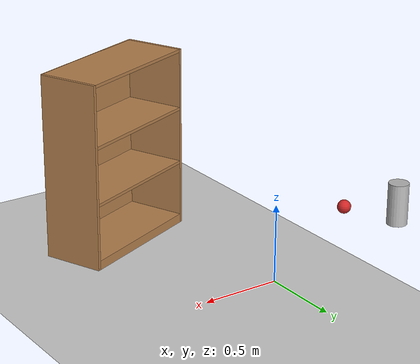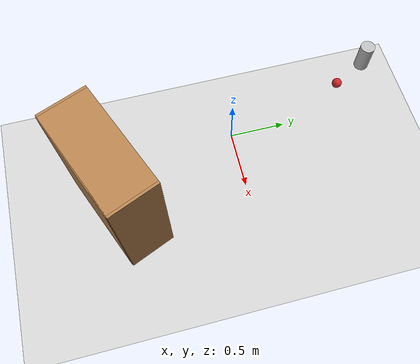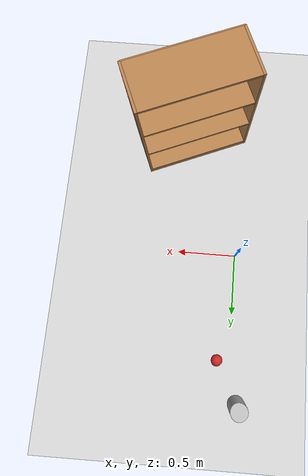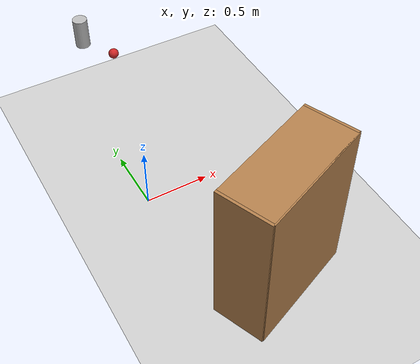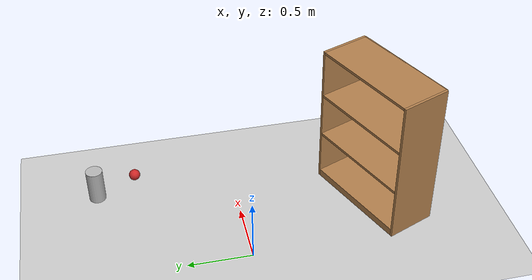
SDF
<sdf version="1.6">
 <world name="default">
  <model name="ground_plane">
   <static>1</static>
   <link name="link">
    <collision name="collision">
     <geometry><plane><normal>0 0 1</normal><size>100 100</size></plane></geometry>
     <surface><friction><ode><mu>100</mu><mu2>50</mu2></ode></friction></surface>
    </collision>
    <visual name="visual">
     <cast_shadows>0</cast_shadows>
     <geometry><plane><normal>0 0 1</normal><size>100 100</size></plane></geometry>
     <material>
      <script><uri>file://media/materials/scripts/gazebo.material</uri><name>Gazebo/Grey</name></script>
     </material>
    </visual>
   </link>
  </model>
  <light name="sun" type="directional">
   <pose>0 0 10 0 -0 0</pose>
   <diffuse>0.8 0.8 0.8 1</diffuse>
   <specular>0.1 0.1 0.1 1</specular>
   <attenuation>
    <range>1000</range>
    <constant>0.9</constant>
    <linear>0.01</linear>
    <quadratic>0.001</quadratic>
   </attenuation>
   <direction>-0.5 0.5 -1</direction>
  </light>
  <physics name="default_physics" default="0" type="ode">
   <real_time_update_rate>1000</real_time_update_rate>
   <max_step_size>0.001</max_step_size>
   <real_time_factor>1</real_time_factor>
  </physics>
  <gravity>0 0 -9.81</gravity>
  <magnetic_field>6e-06 2.3e-05 -4.2e-05</magnetic_field>
  <atmosphere type="adiabatic"/>
  <scene><ambient>0.4 0.4 0.4 1</ambient><background>0.7 0.7 0.7 1</background><shadows>1</shadows></scene>
  <spherical_coordinates>
   <surface_model>EARTH_WGS84</surface_model>
   <latitude_deg>0</latitude_deg>
   <longitude_deg>0</longitude_deg>
   <elevation>0</elevation>
   <heading_deg>0</heading_deg>
  </spherical_coordinates>
  <model name="beer">
   <link name="link">
    <pose>0 0 0.115 0 -0 0</pose>
    <inertial>
     <mass>0.39</mass>
     <inertia><ixx>0.00058</ixx><ixy>0</ixy><ixz>0</ixz><iyy>0.00058</iyy><iyz>0</iyz><izz>0.00019</izz></inertia>
    </inertial>
    <collision name="collision">
     <geometry><cylinder><radius>0.055</radius><length>0.23</length></cylinder></geometry>
    </collision>
    <visual name="visual">
     <geometry><cylinder><radius>0.055</radius><length>0.23</length></cylinder></geometry>
     <material>
      <script>
       <uri>model://beer/materials/scripts</uri>
       <uri>model://beer/materials/textures</uri>
       <name>Beer/Diffuse</name>
      </script>
     </material>
    </visual>
   </link>
   <pose>0.015291 1.05351 0.774992 1e-06 -2.7e-05 0.00041</pose>
  </model>
  <model name="cricket_ball">
   <link name="link">
    <pose>0 0 0.0375 0 -0 0</pose>
    <inertial>
     <mass>0.1467</mass>
     <inertia>
      <ixx>8.25187e-05</ixx>
      <ixy>0</ixy>
      <ixz>0</ixz>
      <iyy>8.25187e-05</iyy>
      <iyz>0</iyz>
      <izz>8.25187e-05</izz>
     </inertia>
    </inertial>
    <collision name="collision">
     <geometry><sphere><radius>0.0375</radius></sphere></geometry>
     <surface>
      <contact>
       <poissons_ratio>0.347</poissons_ratio>
       <elastic_modulus>8.8e+09</elastic_modulus>
       <ode><kp>100000</kp><kd>100</kd><max_vel>100</max_vel><min_depth>0.001</min_depth></ode>
      </contact>
      <friction>
       <torsional>
        <coefficient>1</coefficient>
        <use_patch_radius>0</use_patch_radius>
        <surface_radius>0.01</surface_radius>
       </torsional>
      </friction>
     </surface>
    </collision>
    <visual name="visual">
     <geometry><sphere><radius>0.0375</radius></sphere></geometry>
     <material>
      <script><uri>file://media/materials/scripts/gazebo.material</uri><name>Gazebo/Red</name></script>
     </material>
    </visual>
    <velocity_decay><linear>0</linear><angular>0.005</angular></velocity_decay>
   </link>
   <pose>0.15623 0.79087 0.773986 0 -0 0</pose>
  </model>
  <model name="bookshelf">
   <static>1</static>
   <link name="link">
    <inertial><mass>1</mass></inertial>
    <collision name="back">
     <pose>0 0.005 0.6 0 -0 0</pose>
     <geometry><box><size>0.9 0.01 1.2</size></box></geometry>
    </collision>
    <visual name="visual1">
     <pose>0 0.005 0.6 0 -0 0</pose>
     <geometry><box><size>0.9 0.01 1.2</size></box></geometry>
     <material>
      <script><uri>file://media/materials/scripts/gazebo.material</uri><name>Gazebo/Wood</name></script>
     </material>
    </visual>
    <collision name="left_side">
     <pose>0.45 -0.195 0.6 0 -0 0</pose>
     <geometry><box><size>0.02 0.4 1.2</size></box></geometry>
    </collision>
    <visual name="visual2">
     <pose>0.45 -0.195 0.6 0 -0 0</pose>
     <geometry><box><size>0.02 0.4 1.2</size></box></geometry>
     <material>
      <script><uri>file://media/materials/scripts/gazebo.material</uri><name>Gazebo/Wood</name></script>
     </material>
    </visual>
    <collision name="right_side">
     <pose>-0.45 -0.195 0.6 0 -0 0</pose>
     <geometry><box><size>0.02 0.4 1.2</size></box></geometry>
    </collision>
    <visual name="visual3">
     <pose>-0.45 -0.195 0.6 0 -0 0</pose>
     <geometry><box><size>0.02 0.4 1.2</size></box></geometry>
     <material>
      <script><uri>file://media/materials/scripts/gazebo.material</uri><name>Gazebo/Wood</name></script>
     </material>
    </visual>
    <collision name="bottom">
     <pose>0 -0.195 0.03 0 -0 0</pose>
     <geometry><box><size>0.88 0.4 0.06</size></box></geometry>
    </collision>
    <visual name="visual4">
     <pose>0 -0.195 0.03 0 -0 0</pose>
     <geometry><box><size>0.88 0.4 0.06</size></box></geometry>
     <material>
      <script><uri>file://media/materials/scripts/gazebo.material</uri><name>Gazebo/Wood</name></script>
     </material>
    </visual>
    <collision name="top">
     <pose>0 -0.195 1.19 0 -0 0</pose>
     <geometry><box><size>0.88 0.4 0.02</size></box></geometry>
    </collision>
    <visual name="visual5">
     <pose>0 -0.195 1.19 0 -0 0</pose>
     <geometry><box><size>0.88 0.4 0.02</size></box></geometry>
     <material>
      <script><uri>file://media/materials/scripts/gazebo.material</uri><name>Gazebo/Wood</name></script>
     </material>
    </visual>
    <collision name="low_shelf">
     <pose>0 -0.195 0.43 0 -0 0</pose>
     <geometry><box><size>0.88 0.4 0.02</size></box></geometry>
    </collision>
    <visual name="visual6">
     <pose>0 -0.195 0.43 0 -0 0</pose>
     <geometry><box><size>0.88 0.4 0.02</size></box></geometry>
     <material>
      <script><uri>file://media/materials/scripts/gazebo.material</uri><name>Gazebo/Wood</name></script>
     </material>
    </visual>
    <collision name="high_shelf">
     <pose>0 -0.195 0.8 0 -0 0</pose>
     <geometry><box><size>0.88 0.4 0.02</size></box></geometry>
    </collision>
    <visual name="visual7">
     <pose>0 -0.195 0.8 0 -0 0</pose>
     <geometry><box><size>0.88 0.4 0.02</size></box></geometry>
     <material>
      <script><uri>file://media/materials/scripts/gazebo.material</uri><name>Gazebo/Wood</name></script>
     </material>
    </visual>
   </link>
   <pose>0.535504 -1.26579 0 0 0 -2.74905</pose>
  </model>
 </world>
</sdf>
